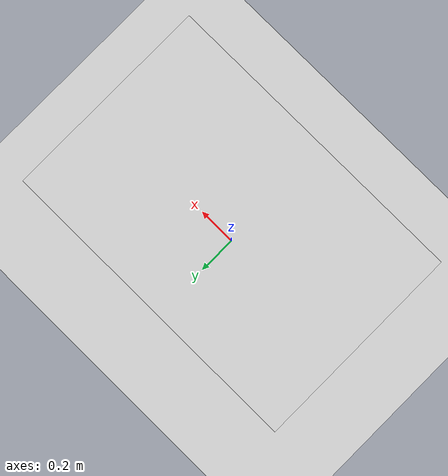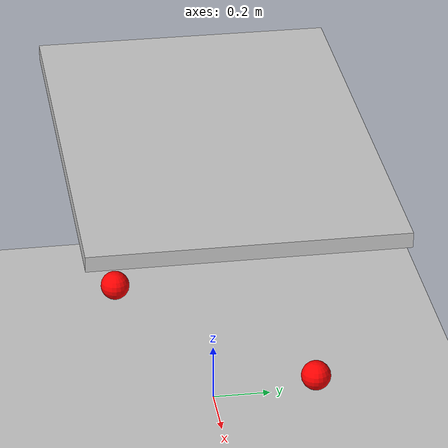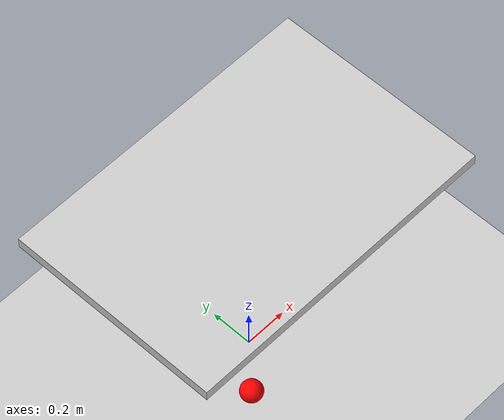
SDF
<?xml version="1.0" ?>
<sdf version="1.6">
  <world name="default">
    <!-- FIX: Add the Gazebo ROS plugin that provides the /set_entity_state service -->
    <plugin name="gazebo_ros_state" filename="libgazebo_ros_state.so">
      <ros>
        <namespace>/gazebo</namespace>
      </ros>
      <update_rate>10</update_rate>
    </plugin>

    <include>
      <uri>model://ground_plane</uri>
    </include>
    <include>
      <uri>model://sun</uri>
    </include>

    <model name="aircraft_wing_sheet">
      <pose>0 0 1.0 0 0 0</pose>
      <static>true</static>
      <link name="wing_link">
        <collision name="wing_collision">
          <geometry>
            <box>
              <size>1.5 1.0 0.05</size>
            </box>
          </geometry>
        </collision>
        <visual name="wing_visual">
          <geometry>
            <box>
              <size>1.5 1.0 0.05</size>
            </box>
          </geometry>
          <material>
            <ambient>0.7 0.7 0.7 1</ambient>
            <diffuse>0.8 0.8 0.8 1</diffuse>
          </material>
        </visual>
        <!-- The blue square visual has been removed from here -->
      </link>
    </model>

    <!-- FIX: Create a separate, movable model for the blue square -->
    <model name="blue_square">
      <!-- Initial position matches the old visual's position -->
      <pose>-0.15 0 0.97 0 0 0</pose>
      <static>false</static>
      <link name="link">
        <kinematic>true</kinematic>
        <visual name="visual">
          <geometry>
            <box>
              <size>0.03 0.03 0.001</size>
            </box>
          </geometry>
          <material>
            <ambient>0 0 1 1</ambient>
            <diffuse>0 0 1 1</diffuse>
          </material>
        </visual>
        <!-- Add a collision shape so the depth camera can see it -->
        <collision name="collision">
           <geometry>
            <box>
              <size>0.03 0.03 0.001</size>
            </box>
          </geometry>
        </collision>
      </link>
    </model>

    <model name="sphere">
      <pose>-0.3 -0.3 0.3 0 0 0</pose>
      <link name="link">
        <inertial>
          <mass>0.2</mass>
        </inertial>
        <collision name="collision">
          <geometry>
            <sphere>
              <radius>0.05</radius>
            </sphere>
          </geometry>
        </collision>
        <visual name="visual">
          <geometry>
            <sphere>
              <radius>0.05</radius>
            </sphere>
          </geometry>
          <material>
            <ambient>1 0 0 1</ambient>
            <diffuse>1 0 0 1</diffuse>
          </material>
        </visual>
      </link>
    </model>

    <model name="sphere2">
      <pose>0.3 0.3 0.25 0 0 0</pose>
      <link name="link">
        <inertial>
          <mass>0.2</mass>
        </inertial>
        <collision name="collision">
          <geometry>
            <sphere>
              <radius>0.05</radius>
            </sphere>
          </geometry>
        </collision>
        <visual name="visual">
          <geometry>
            <sphere>
              <radius>0.05</radius>
            </sphere>
          </geometry>
          <material>
            <ambient>1 0 0 1</ambient>
            <diffuse>1 0 0 1</diffuse>
          </material>
        </visual>
      </link>
    </model>

    <physics type="ode">
      <max_step_size>0.001</max_step_size>
      <real_time_factor>1</real_time_factor>
      <real_time_update_rate>1000</real_time_update_rate>
      <gravity>0 0 -9.81</gravity>
    </physics>
  </world>
</sdf>
